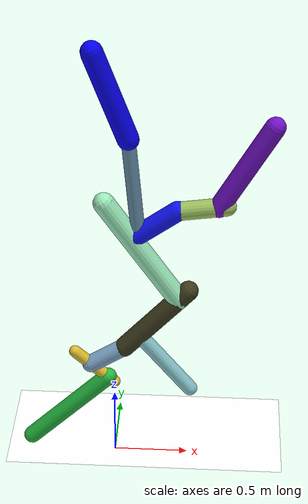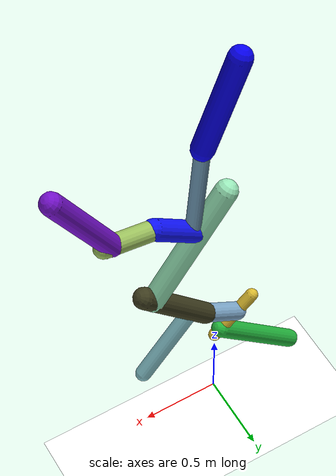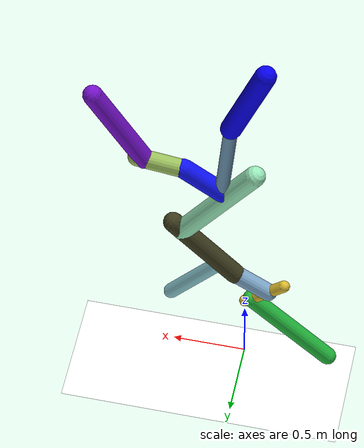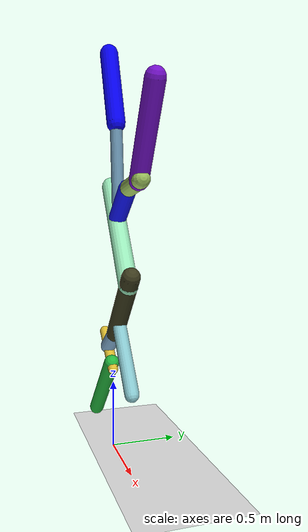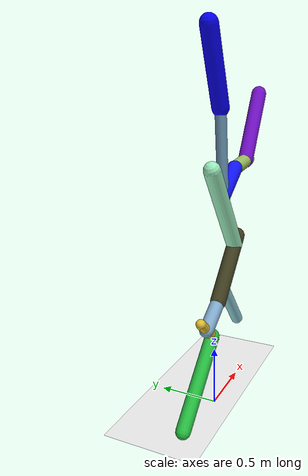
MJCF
<mujoco model="morphology">
  <option timestep="0.01"/>
  <default>
    <default class="/"/>
    <default class="0/"/>
    <default class="0/1/"/>
    <default class="0/2/"/>
    <default class="0/2/3/"/>
    <default class="0/2/3/4/"/>
    <default class="0/2/3/5/"/>
    <default class="0/2/3/5/6/"/>
    <default class="0/2/3/5/6/7/"/>
    <default class="0/2/3/5/6/7/8/"/>
    <default class="0/2/3/5/6/9/"/>
    <default class="0/2/3/5/6/9/10/"/>
  </default>
  <asset>
    <texture name="texplane" type="2d" builtin="checker" rgb1="0.10000000000000001 0.20000000000000001 0.29999999999999999" rgb2="0.20000000000000001 0.29999999999999999 0.40000000000000002" width="300" height="300"/>
    <material name="MatPlane" class="/" texture="texplane" texrepeat="20 20" specular="1" shininess="1" reflectance="0.5"/>
  </asset>
  <worldbody>
    <light name="//unnamed_light_0" class="/" directional="true" pos="0 0 1.5" dir="0 0 -1.3" cutoff="100" exponent="1" diffuse="1 1 1" specular="0.10000000000000001 0.10000000000000001 0.10000000000000001"/>
    <geom name="ground" class="/" type="plane" size="15 15 0.5" material="MatPlane" rgba="1 1 1 1"/>
    <site name="body" class="/" size="9.9999999999999995e-07 9.9999999999999995e-07 9.9999999999999995e-07" pos="0 0 0.60356906652450559"/>
    <body pos="0 0 0.60356906652450559" name="0/">
      <joint name="0/rootx/" class="/" type="slide" axis="1 0 0" limited="false" stiffness="0" armature="0" damping="0"/>
      <joint name="0/rootz/" class="/" type="slide" axis="0 0 1" limited="false" stiffness="0" armature="0" damping="0"/>
      <joint name="0/rooty/" class="/" type="hinge" axis="0 1 0" limited="false" stiffness="0" armature="0" damping="0"/>
      <geom name="0/geom" class="0/" type="capsule" contype="1" conaffinity="1" condim="3" size="0.040590990725449728" rgba="0.86753548841999195 0.73898988861083903 0.19002812570010996 1" friction="0.59999999999999998 0.10000000000000001 0.10000000000000001" fromto="0 0 0 -0.26233887471004247 0 0.24263226890542566"/>
      <site name="0/end0" class="0/" size="0.0050000000000000001" pos="-0.26233887471004247 0 0.24263226890542566"/>
      <site name="0/attach1" class="0/" size="9.9999999999999995e-07 9.9999999999999995e-07 9.9999999999999995e-07" pos="-0.042855556960322075 0 0.03963629497146199"/>
      <body pos="-0.042855556960322075 0 0.03963629497146199" name="0/1/">
        <geom name="0/1/geom" class="0/1/" type="capsule" contype="1" conaffinity="1" condim="3" size="0.059590880440927529" rgba="0.1439712679025642 0.72817187390019322 0.24629403494789848 1" friction="0.59999999999999998 0.10000000000000001 0.10000000000000001" fromto="0 0 0 -0.5414898080903664 0 -0.54320535861978247"/>
        <site name="0/1/end1" class="0/1/" size="0.0050000000000000001" pos="-0.5414898080903664 0 -0.54320535861978247"/>
      </body>
      <site name="0/attach2" class="0/" size="9.9999999999999995e-07 9.9999999999999995e-07 9.9999999999999995e-07" pos="-0.15660592368713178 0 0.14484186009502675"/>
      <body pos="-0.15660592368713178 0 0.14484186009502675" name="0/2/">
        <joint name="0/2/joint/" class="0/" type="hinge" axis="0 1 0" limited="true" range="-63.148857527680974 63.148857527680974"/>
        <geom name="0/2/geom" class="0/2/" type="capsule" contype="1" conaffinity="1" condim="3" size="0.059674921142727988" rgba="0.49729310348588496 0.6630419539783885 0.79887082445861535 1" friction="0.59999999999999998 0.10000000000000001 0.10000000000000001" fromto="0 0 0 0.24052914977737805 0 0.15932024209111906"/>
        <site name="0/2/end2" class="0/2/" size="0.0050000000000000001" pos="0.24052914977737805 0 0.15932024209111906"/>
        <site name="0/2/attach3" class="0/2/" size="9.9999999999999995e-07 9.9999999999999995e-07 9.9999999999999995e-07" pos="0.22765489993341639 0 0.15079267441884339"/>
        <body pos="0.22765489993341639 0 0.15079267441884339" name="0/2/3/">
          <geom name="0/2/3/geom" class="0/2/3/" type="capsule" contype="1" conaffinity="1" condim="3" size="0.066786234199408379" rgba="0.24342978924340408 0.23887390568242628 0.12184349850557319 1" friction="0.59999999999999998 0.10000000000000001 0.10000000000000001" fromto="0 0 0 0.41956090247785482 0 0.4708003871294244"/>
          <site name="0/2/3/end3" class="0/2/3/" size="0.0050000000000000001" pos="0.41956090247785482 0 0.4708003871294244"/>
          <site name="0/2/3/attach4" class="0/2/3/" size="9.9999999999999995e-07 9.9999999999999995e-07 9.9999999999999995e-07" pos="0.096047981488890863 0 0.10777798074346637"/>
          <body pos="0.096047981488890863 0 0.10777798074346637" name="0/2/3/4/">
            <joint name="0/2/3/4/joint/" class="0/2/3/" type="hinge" axis="0 1 0" limited="true" range="-31.604913736221615 31.604913736221615"/>
            <geom name="0/2/3/4/geom" class="0/2/3/4/" type="capsule" contype="1" conaffinity="1" condim="3" size="0.050858023655470208" rgba="0.53762559473259475 0.78432537320716944 0.81435476290209996 1" friction="0.59999999999999998 0.10000000000000001 0.10000000000000001" fromto="0 0 0 0.34757259966088627 0 -0.43878134421362758"/>
            <site name="0/2/3/4/end4" class="0/2/3/4/" size="0.0050000000000000001" pos="0.34757259966088627 0 -0.43878134421362758"/>
          </body>
          <site name="0/2/3/attach5" class="0/2/3/" size="9.9999999999999995e-07 9.9999999999999995e-07 9.9999999999999995e-07" pos="0.35760926498704687 0 0.40128281592171722"/>
          <body pos="0.35760926498704687 0 0.40128281592171722" name="0/2/3/5/">
            <geom name="0/2/3/5/geom" class="0/2/3/5/" type="capsule" contype="1" conaffinity="1" condim="3" size="0.069311842871972076" rgba="0.60809945555384515 0.92361783726750624 0.73459364764627155 1" friction="0.59999999999999998 0.10000000000000001 0.10000000000000001" fromto="0 0 0 -0.47878684103888947 0 0.71206931190658951"/>
            <site name="0/2/3/5/end5" class="0/2/3/5/" size="0.0050000000000000001" pos="-0.47878684103888947 0 0.71206931190658951"/>
            <site name="0/2/3/5/attach6" class="0/2/3/5/" size="9.9999999999999995e-07 9.9999999999999995e-07 9.9999999999999995e-07" pos="-0.30595954772184147 0 0.45503423641471169"/>
            <body pos="-0.30595954772184147 0 0.45503423641471169" name="0/2/3/5/6/">
              <joint name="0/2/3/5/6/joint/" class="0/2/3/5/" type="hinge" axis="0 1 0" limited="true" range="-68.232666615749864 68.232666615749864"/>
              <geom name="0/2/3/5/6/geom" class="0/2/3/5/6/" type="capsule" contype="1" conaffinity="1" condim="3" size="0.064995296164128802" rgba="0.063059763772806754 0.076843450504176847 0.97103742549686689 1" friction="0.59999999999999998 0.10000000000000001 0.10000000000000001" fromto="0 0 0 0.29007365797489371 0 0.21466030482348819"/>
              <site name="0/2/3/5/6/end6" class="0/2/3/5/6/" size="0.0050000000000000001" pos="0.29007365797489371 0 0.21466030482348819"/>
              <site name="0/2/3/5/6/attach7" class="0/2/3/5/6/" size="9.9999999999999995e-07 9.9999999999999995e-07 9.9999999999999995e-07" pos="0.043672712402713899 0 0.03231868009761335"/>
              <body pos="0.043672712402713899 0 0.03231868009761335" name="0/2/3/5/6/7/">
                <joint name="0/2/3/5/6/7/joint/" class="0/2/3/5/6/" type="hinge" axis="0 1 0" limited="true" range="-37.20249814861458 37.20249814861458"/>
                <geom name="0/2/3/5/6/7/geom" class="0/2/3/5/6/7/" type="capsule" contype="1" conaffinity="1" condim="3" size="0.045764685242993819" rgba="0.41591116620015867 0.58003144959532427 0.68936296683895915 1" friction="0.59999999999999998 0.10000000000000001 0.10000000000000001" fromto="0 0 0 -0.060780141409356503 0 0.68843406396401097"/>
                <site name="0/2/3/5/6/7/end7" class="0/2/3/5/6/7/" size="0.0050000000000000001" pos="-0.060780141409356503 0 0.68843406396401097"/>
                <site name="0/2/3/5/6/7/attach8" class="0/2/3/5/6/7/" size="9.9999999999999995e-07 9.9999999999999995e-07 9.9999999999999995e-07" pos="-0.059741866848748597 0 0.67667391404175836"/>
                <body pos="-0.059741866848748597 0 0.67667391404175836" name="0/2/3/5/6/7/8/">
                  <geom name="0/2/3/5/6/7/8/geom" class="0/2/3/5/6/7/8/" type="capsule" contype="1" conaffinity="1" condim="3" size="0.069160849215349443" rgba="0.025568151892852886 0.0016602562930968512 0.94586289250341116 1" friction="0.59999999999999998 0.10000000000000001 0.10000000000000001" fromto="0 0 0 -0.21059098686719535 0 0.56641540586084682"/>
                  <site name="0/2/3/5/6/7/8/end8" class="0/2/3/5/6/7/8/" size="0.0050000000000000001" pos="-0.21059098686719535 0 0.56641540586084682"/>
                </body>
              </body>
              <site name="0/2/3/5/6/attach9" class="0/2/3/5/6/" size="9.9999999999999995e-07 9.9999999999999995e-07 9.9999999999999995e-07" pos="0.28858367571474286 0 0.2135576881695718"/>
              <body pos="0.28858367571474286 0 0.2135576881695718" name="0/2/3/5/6/9/">
                <joint name="0/2/3/5/6/9/joint/" class="0/2/3/5/6/" type="hinge" axis="0 1 0" limited="true" range="-40.195401534868225 40.195401534868225"/>
                <geom name="0/2/3/5/6/9/geom" class="0/2/3/5/6/9/" type="capsule" contype="1" conaffinity="1" condim="3" size="0.060038800292516216" rgba="0.61370036562428965 0.75717062278168157 0.37065926146182482 1" friction="0.59999999999999998 0.10000000000000001 0.10000000000000001" fromto="0 0 0 0.30832153147775854 0 0.044369061032378809"/>
                <site name="0/2/3/5/6/9/end9" class="0/2/3/5/6/9/" size="0.0050000000000000001" pos="0.30832153147775854 0 0.044369061032378809"/>
                <site name="0/2/3/5/6/9/attach10" class="0/2/3/5/6/9/" size="9.9999999999999995e-07 9.9999999999999995e-07 9.9999999999999995e-07" pos="0.2588029085608804 0 0.037243075403325165"/>
                <body pos="0.2588029085608804 0 0.037243075403325165" name="0/2/3/5/6/9/10/">
                  <joint name="0/2/3/5/6/9/10/joint/" class="0/2/3/5/6/9/" type="hinge" axis="0 1 0" limited="true" range="-64.095788789061999 64.095788789061999"/>
                  <geom name="0/2/3/5/6/9/10/geom" class="0/2/3/5/6/9/10/" type="capsule" contype="1" conaffinity="1" condim="3" size="0.065065527959352137" rgba="0.46033136507827188 0.067168800202053847 0.80244554890537179 1" friction="0.59999999999999998 0.10000000000000001 0.10000000000000001" fromto="0 0 0 0.31884444711009152 0 0.56665384960577647"/>
                  <site name="0/2/3/5/6/9/10/end10" class="0/2/3/5/6/9/10/" size="0.0050000000000000001" pos="0.31884444711009152 0 0.56665384960577647"/>
                </body>
              </body>
            </body>
          </body>
        </body>
      </body>
      <camera name="0/side" class="0/" mode="trackcom" pos="0.40000000000000002 -4 0.20000000000000001" quat="0.70699999999999996 0.70699999999999996 0 0"/>
    </body>
  </worldbody>
  <actuator>
    <motor name="0/2/motor" class="0/2/" ctrllimited="true" ctrlrange="-1 1" gear="60" joint="0/2/joint/"/>
    <motor name="0/2/3/4/motor" class="0/2/3/4/" ctrllimited="true" ctrlrange="-1 1" gear="54" joint="0/2/3/4/joint/"/>
    <motor name="0/2/3/5/6/motor" class="0/2/3/5/6/" ctrllimited="true" ctrlrange="-1 1" gear="77" joint="0/2/3/5/6/joint/"/>
    <motor name="0/2/3/5/6/7/motor" class="0/2/3/5/6/7/" ctrllimited="true" ctrlrange="-1 1" gear="79" joint="0/2/3/5/6/7/joint/"/>
    <motor name="0/2/3/5/6/9/motor" class="0/2/3/5/6/9/" ctrllimited="true" ctrlrange="-1 1" gear="62" joint="0/2/3/5/6/9/joint/"/>
    <motor name="0/2/3/5/6/9/10/motor" class="0/2/3/5/6/9/10/" ctrllimited="true" ctrlrange="-1 1" gear="72" joint="0/2/3/5/6/9/10/joint/"/>
  </actuator>
  <sensor>
    <subtreelinvel name="velocity" body="0/"/>
  </sensor>
</mujoco>
